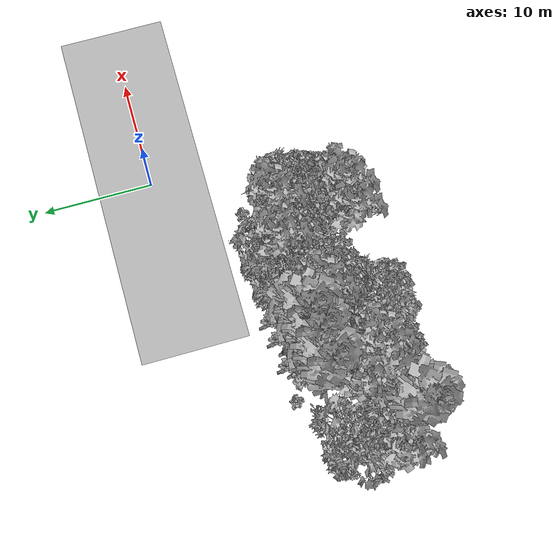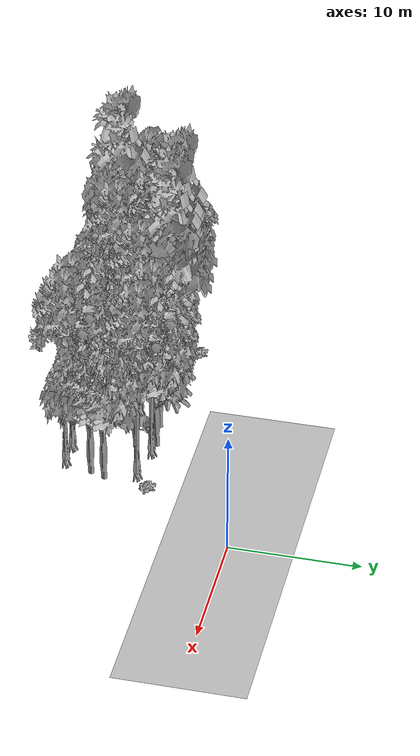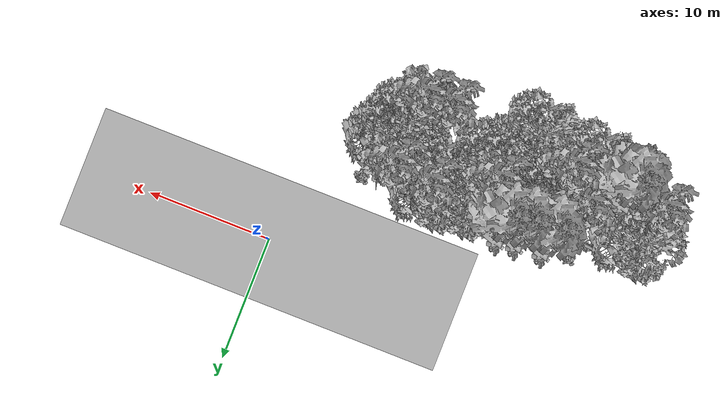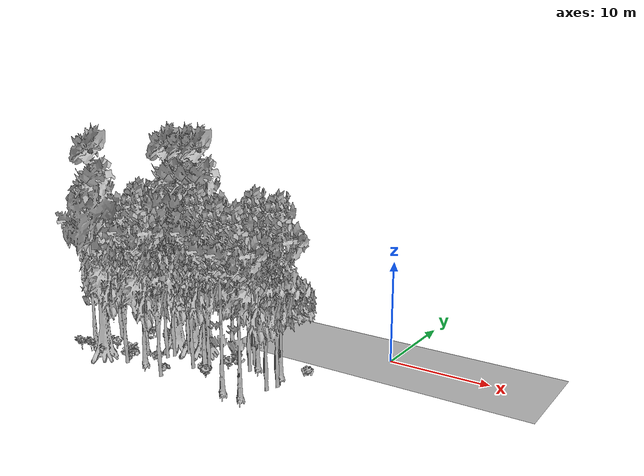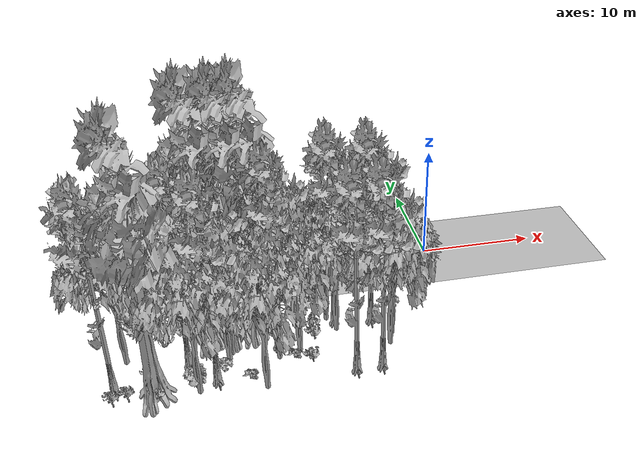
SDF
<sdf version="1.7">
 <world name="default">
  <model name="ground_plane">
   <static>1</static>
   <link name="link">
    <collision name="collision">
     <geometry><plane><normal>0 0 1</normal><size>100 100</size></plane></geometry>
     <surface><contact><ode><min_depth>0.01</min_depth><max_vel>0</max_vel></ode></contact></surface>
    </collision>
    <visual name="grass">
     <cast_shadows>0</cast_shadows>
     <geometry>
      <mesh>
       <scale>0.5814285714285714 0.18142857142857144 0.1</scale>
       <uri>file://grass_plane/meshes/grass_plane.dae</uri>
      </mesh>
     </geometry>
    </visual>
   </link>
  </model>
  <model name="Tree 7">
   <static>1</static>
   <pose>-26.50356392235294 -10.003784884026725 0 1.57079 -0 0</pose>
   <link name="link">
    <collision name="collision">
     <geometry><mesh><scale>3.5 5 3.5</scale><uri>model://tree_2/meshes/tree_2.obj</uri></mesh></geometry>
    </collision>
    <visual name="visual">
     <geometry><mesh><scale>3.5 5 3.5</scale><uri>model://tree_2/meshes/tree_2.obj</uri></mesh></geometry>
    </visual>
   </link>
  </model>
  <model name="Tree 32">
   <static>1</static>
   <pose>-27.256612310869155 -12.789069161869099 0 1.57079 -0 0</pose>
   <link name="link">
    <collision name="collision">
     <geometry><mesh><scale>3.5 5 3.5</scale><uri>model://tree_9/meshes/tree_9.obj</uri></mesh></geometry>
    </collision>
    <visual name="visual">
     <geometry><mesh><scale>3.5 5 3.5</scale><uri>model://tree_9/meshes/tree_9.obj</uri></mesh></geometry>
    </visual>
   </link>
  </model>
  <model name="Tree 37">
   <static>1</static>
   <pose>-10.161082945502073 -9.421930282803805 0 1.57079 -0 0</pose>
   <link name="link">
    <collision name="collision">
     <geometry><mesh><scale>3.5 5 3.5</scale><uri>model://tree_2/meshes/tree_2.obj</uri></mesh></geometry>
    </collision>
    <visual name="visual">
     <geometry><mesh><scale>3.5 5 3.5</scale><uri>model://tree_2/meshes/tree_2.obj</uri></mesh></geometry>
    </visual>
   </link>
  </model>
  <model name="Tree 54">
   <static>1</static>
   <pose>-13.398168805176041 -11.41270542551662 0 1.57079 -0 0</pose>
   <link name="link">
    <collision name="collision">
     <geometry><mesh><scale>3.5 5 3.5</scale><uri>model://tree_2/meshes/tree_2.obj</uri></mesh></geometry>
    </collision>
    <visual name="visual">
     <geometry><mesh><scale>3.5 5 3.5</scale><uri>model://tree_2/meshes/tree_2.obj</uri></mesh></geometry>
    </visual>
   </link>
  </model>
  <model name="Tree 85">
   <static>1</static>
   <pose>-18.52844617470343 -10.62968452248207 0 1.57079 -0 0</pose>
   <link name="link">
    <collision name="collision">
     <geometry><mesh><scale>3.5 5 3.5</scale><uri>model://tree_2/meshes/tree_2.obj</uri></mesh></geometry>
    </collision>
    <visual name="visual">
     <geometry><mesh><scale>3.5 5 3.5</scale><uri>model://tree_2/meshes/tree_2.obj</uri></mesh></geometry>
    </visual>
   </link>
  </model>
  <model name="Tree 90">
   <static>1</static>
   <pose>-17.841648080848024 -8.521651692213535 0 1.57079 -0 0</pose>
   <link name="link">
    <collision name="collision">
     <geometry><mesh><scale>3.5 5 3.5</scale><uri>model://tree_4/meshes/tree_4.obj</uri></mesh></geometry>
    </collision>
    <visual name="visual">
     <geometry><mesh><scale>3.5 5 3.5</scale><uri>model://tree_4/meshes/tree_4.obj</uri></mesh></geometry>
    </visual>
   </link>
  </model>
  <model name="Tree 102">
   <static>1</static>
   <pose>-21.199270986677252 -14.402922565292286 0 1.57079 -0 0</pose>
   <link name="link">
    <collision name="collision">
     <geometry><mesh><scale>3.5 5 3.5</scale><uri>model://tree_2/meshes/tree_2.obj</uri></mesh></geometry>
    </collision>
    <visual name="visual">
     <geometry><mesh><scale>3.5 5 3.5</scale><uri>model://tree_2/meshes/tree_2.obj</uri></mesh></geometry>
    </visual>
   </link>
  </model>
  <model name="Tree 110">
   <static>1</static>
   <pose>-10.01451948565132 -8.17476121073776 0 1.57079 -0 0</pose>
   <link name="link">
    <collision name="collision">
     <geometry><mesh><scale>3.5 5 3.5</scale><uri>model://tree_9/meshes/tree_9.obj</uri></mesh></geometry>
    </collision>
    <visual name="visual">
     <geometry><mesh><scale>3.5 5 3.5</scale><uri>model://tree_9/meshes/tree_9.obj</uri></mesh></geometry>
    </visual>
   </link>
  </model>
  <model name="Tree 142">
   <static>1</static>
   <pose>-24.27670281853038 -14.206072673165053 0 1.57079 -0 0</pose>
   <link name="link">
    <collision name="collision">
     <geometry><mesh><scale>3.5 5 3.5</scale><uri>model://tree_4/meshes/tree_4.obj</uri></mesh></geometry>
    </collision>
    <visual name="visual">
     <geometry><mesh><scale>3.5 5 3.5</scale><uri>model://tree_4/meshes/tree_4.obj</uri></mesh></geometry>
    </visual>
   </link>
  </model>
  <model name="Tree 148">
   <static>1</static>
   <pose>-16.341530281726698 -14.918523298218098 0 1.57079 -0 0</pose>
   <link name="link">
    <collision name="collision">
     <geometry><mesh><scale>3.5 5 3.5</scale><uri>model://tree_2/meshes/tree_2.obj</uri></mesh></geometry>
    </collision>
    <visual name="visual">
     <geometry><mesh><scale>3.5 5 3.5</scale><uri>model://tree_2/meshes/tree_2.obj</uri></mesh></geometry>
    </visual>
   </link>
  </model>
  <model name="Tree 170">
   <static>1</static>
   <pose>-17.81671194767356 -9.296824891989264 0 1.57079 -0 0</pose>
   <link name="link">
    <collision name="collision">
     <geometry><mesh><scale>3.5 5 3.5</scale><uri>model://tree_2/meshes/tree_2.obj</uri></mesh></geometry>
    </collision>
    <visual name="visual">
     <geometry><mesh><scale>3.5 5 3.5</scale><uri>model://tree_2/meshes/tree_2.obj</uri></mesh></geometry>
    </visual>
   </link>
  </model>
  <model name="Tree 177">
   <static>1</static>
   <pose>-6.346810671485024 -11.970695308302458 0 1.57079 -0 0</pose>
   <link name="link">
    <collision name="collision">
     <geometry><mesh><scale>3.5 5 3.5</scale><uri>model://tree_2/meshes/tree_2.obj</uri></mesh></geometry>
    </collision>
    <visual name="visual">
     <geometry><mesh><scale>3.5 5 3.5</scale><uri>model://tree_2/meshes/tree_2.obj</uri></mesh></geometry>
    </visual>
   </link>
  </model>
  <model name="Tree 237">
   <static>1</static>
   <pose>-13.049121994067256 -8.259192979325126 0 1.57079 -0 0</pose>
   <link name="link">
    <collision name="collision">
     <geometry><mesh><scale>3.5 5 3.5</scale><uri>model://tree_2/meshes/tree_2.obj</uri></mesh></geometry>
    </collision>
    <visual name="visual">
     <geometry><mesh><scale>3.5 5 3.5</scale><uri>model://tree_2/meshes/tree_2.obj</uri></mesh></geometry>
    </visual>
   </link>
  </model>
  <model name="Tree 240">
   <static>1</static>
   <pose>-19.92155651825697 -8.70672950541189 0 1.57079 -0 0</pose>
   <link name="link">
    <collision name="collision">
     <geometry><mesh><scale>3.5 5 3.5</scale><uri>model://tree_4/meshes/tree_4.obj</uri></mesh></geometry>
    </collision>
    <visual name="visual">
     <geometry><mesh><scale>3.5 5 3.5</scale><uri>model://tree_4/meshes/tree_4.obj</uri></mesh></geometry>
    </visual>
   </link>
  </model>
  <model name="Tree 247">
   <static>1</static>
   <pose>-10.721074627414268 -7.947490337731276 0 1.57079 -0 0</pose>
   <link name="link">
    <collision name="collision">
     <geometry><mesh><scale>3.5 5 3.5</scale><uri>model://tree_2/meshes/tree_2.obj</uri></mesh></geometry>
    </collision>
    <visual name="visual">
     <geometry><mesh><scale>3.5 5 3.5</scale><uri>model://tree_2/meshes/tree_2.obj</uri></mesh></geometry>
    </visual>
   </link>
  </model>
  <model name="Tree 260">
   <static>1</static>
   <pose>-14.874898172854273 -10.274900404385868 0 1.57079 -0 0</pose>
   <link name="link">
    <collision name="collision">
     <geometry><mesh><scale>3.5 5 3.5</scale><uri>model://tree_9/meshes/tree_9.obj</uri></mesh></geometry>
    </collision>
    <visual name="visual">
     <geometry><mesh><scale>3.5 5 3.5</scale><uri>model://tree_9/meshes/tree_9.obj</uri></mesh></geometry>
    </visual>
   </link>
  </model>
  <model name="Tree 294">
   <static>1</static>
   <pose>-7.4396011094350385 -14.226553793921905 0 1.57079 -0 0</pose>
   <link name="link">
    <collision name="collision">
     <geometry><mesh><scale>3.5 5 3.5</scale><uri>model://tree_9/meshes/tree_9.obj</uri></mesh></geometry>
    </collision>
    <visual name="visual">
     <geometry><mesh><scale>3.5 5 3.5</scale><uri>model://tree_9/meshes/tree_9.obj</uri></mesh></geometry>
    </visual>
   </link>
  </model>
  <model name="Tree 326">
   <static>1</static>
   <pose>-15.051756699150197 -11.869920343238405 0 1.57079 -0 0</pose>
   <link name="link">
    <collision name="collision">
     <geometry><mesh><scale>3.5 5 3.5</scale><uri>model://tree_2/meshes/tree_2.obj</uri></mesh></geometry>
    </collision>
    <visual name="visual">
     <geometry><mesh><scale>3.5 5 3.5</scale><uri>model://tree_2/meshes/tree_2.obj</uri></mesh></geometry>
    </visual>
   </link>
  </model>
  <model name="Tree 346">
   <static>1</static>
   <pose>-5.9450678886671255 -10.857552492325027 0 1.57079 -0 0</pose>
   <link name="link">
    <collision name="collision">
     <geometry><mesh><scale>3.5 5 3.5</scale><uri>model://tree_2/meshes/tree_2.obj</uri></mesh></geometry>
    </collision>
    <visual name="visual">
     <geometry><mesh><scale>3.5 5 3.5</scale><uri>model://tree_2/meshes/tree_2.obj</uri></mesh></geometry>
    </visual>
   </link>
  </model>
  <model name="Tree 377">
   <static>1</static>
   <pose>-16.386226156823014 -8.333586000743129 0 1.57079 -0 0</pose>
   <link name="link">
    <collision name="collision">
     <geometry><mesh><scale>3.5 5 3.5</scale><uri>model://tree_4/meshes/tree_4.obj</uri></mesh></geometry>
    </collision>
    <visual name="visual">
     <geometry><mesh><scale>3.5 5 3.5</scale><uri>model://tree_4/meshes/tree_4.obj</uri></mesh></geometry>
    </visual>
   </link>
  </model>
  <model name="Tree 389">
   <static>1</static>
   <pose>-9.427552476458708 -14.221566116995428 0 1.57079 -0 0</pose>
   <link name="link">
    <collision name="collision">
     <geometry><mesh><scale>3.5 5 3.5</scale><uri>model://tree_9/meshes/tree_9.obj</uri></mesh></geometry>
    </collision>
    <visual name="visual">
     <geometry><mesh><scale>3.5 5 3.5</scale><uri>model://tree_9/meshes/tree_9.obj</uri></mesh></geometry>
    </visual>
   </link>
  </model>
  <model name="Tree 402">
   <static>1</static>
   <pose>-18.8124002814672 -11.352189814709659 0 1.57079 -0 0</pose>
   <link name="link">
    <collision name="collision">
     <geometry><mesh><scale>3.5 5 3.5</scale><uri>model://tree_2/meshes/tree_2.obj</uri></mesh></geometry>
    </collision>
    <visual name="visual">
     <geometry><mesh><scale>3.5 5 3.5</scale><uri>model://tree_2/meshes/tree_2.obj</uri></mesh></geometry>
    </visual>
   </link>
  </model>
  <model name="Tree 410">
   <static>1</static>
   <pose>-19.788942325213235 -13.305261611173204 0 1.57079 -0 0</pose>
   <link name="link">
    <collision name="collision">
     <geometry><mesh><scale>3.5 5 3.5</scale><uri>model://tree_9/meshes/tree_9.obj</uri></mesh></geometry>
    </collision>
    <visual name="visual">
     <geometry><mesh><scale>3.5 5 3.5</scale><uri>model://tree_9/meshes/tree_9.obj</uri></mesh></geometry>
    </visual>
   </link>
  </model>
  <model name="Tree 435">
   <static>1</static>
   <pose>-7.061368661687972 -8.581677769735776 0 1.57079 -0 0</pose>
   <link name="link">
    <collision name="collision">
     <geometry><mesh><scale>3.5 5 3.5</scale><uri>model://tree_9/meshes/tree_9.obj</uri></mesh></geometry>
    </collision>
    <visual name="visual">
     <geometry><mesh><scale>3.5 5 3.5</scale><uri>model://tree_9/meshes/tree_9.obj</uri></mesh></geometry>
    </visual>
   </link>
  </model>
  <model name="Tree 439">
   <static>1</static>
   <pose>-21.780121989151667 -11.035043760903445 0 1.57079 -0 0</pose>
   <link name="link">
    <collision name="collision">
     <geometry><mesh><scale>3.5 5 3.5</scale><uri>model://tree_9/meshes/tree_9.obj</uri></mesh></geometry>
    </collision>
    <visual name="visual">
     <geometry><mesh><scale>3.5 5 3.5</scale><uri>model://tree_9/meshes/tree_9.obj</uri></mesh></geometry>
    </visual>
   </link>
  </model>
  <model name="Bush 3">
   <static>1</static>
   <pose>-21.339254544352237 -13.85717198082575 0 1.57079 -0 0</pose>
   <link name="link">
    <collision name="collision">
     <geometry><mesh><scale>2 2 2</scale><uri>model://bush_1/meshes/bush_1.obj</uri></mesh></geometry>
     <surface><contact><collide_without_contact>false</collide_without_contact></contact></surface>
    </collision>
    <visual name="visual">
     <geometry><mesh><scale>2 2 2</scale><uri>model://bush_1/meshes/bush_1.obj</uri></mesh></geometry>
    </visual>
   </link>
  </model>
  <model name="Bush 5">
   <static>1</static>
   <pose>-20.536273861425812 -8.23959010506734 0 1.57079 -0 0</pose>
   <link name="link">
    <collision name="collision">
     <geometry><mesh><scale>2 2 2</scale><uri>model://bush_0/meshes/bush_0.obj</uri></mesh></geometry>
     <surface><contact><collide_without_contact>false</collide_without_contact></contact></surface>
    </collision>
    <visual name="visual">
     <geometry><mesh><scale>2 2 2</scale><uri>model://bush_0/meshes/bush_0.obj</uri></mesh></geometry>
    </visual>
   </link>
  </model>
  <model name="Bush 8">
   <static>1</static>
   <pose>-12.53032103517782 -12.876696739770562 0 1.57079 -0 0</pose>
   <link name="link">
    <collision name="collision">
     <geometry><mesh><scale>2 2 2</scale><uri>model://bush_0/meshes/bush_0.obj</uri></mesh></geometry>
     <surface><contact><collide_without_contact>false</collide_without_contact></contact></surface>
    </collision>
    <visual name="visual">
     <geometry><mesh><scale>2 2 2</scale><uri>model://bush_0/meshes/bush_0.obj</uri></mesh></geometry>
    </visual>
   </link>
  </model>
  <model name="Bush 10">
   <static>1</static>
   <pose>-19.139897958078052 -12.138651281239088 0 1.57079 -0 0</pose>
   <link name="link">
    <collision name="collision">
     <geometry><mesh><scale>2 2 2</scale><uri>model://bush_3/meshes/bush_3.obj</uri></mesh></geometry>
     <surface><contact><collide_without_contact>false</collide_without_contact></contact></surface>
    </collision>
    <visual name="visual">
     <geometry><mesh><scale>2 2 2</scale><uri>model://bush_3/meshes/bush_3.obj</uri></mesh></geometry>
    </visual>
   </link>
  </model>
  <model name="Bush 41">
   <static>1</static>
   <pose>-20.608587798377123 -8.229699669218702 0 1.57079 -0 0</pose>
   <link name="link">
    <collision name="collision">
     <geometry><mesh><scale>2 2 2</scale><uri>model://bush_1/meshes/bush_1.obj</uri></mesh></geometry>
     <surface><contact><collide_without_contact>false</collide_without_contact></contact></surface>
    </collision>
    <visual name="visual">
     <geometry><mesh><scale>2 2 2</scale><uri>model://bush_1/meshes/bush_1.obj</uri></mesh></geometry>
    </visual>
   </link>
  </model>
  <model name="Bush 45">
   <static>1</static>
   <pose>-24.499219343827985 -12.450270227873915 0 1.57079 -0 0</pose>
   <link name="link">
    <collision name="collision">
     <geometry><mesh><scale>2 2 2</scale><uri>model://bush_0/meshes/bush_0.obj</uri></mesh></geometry>
     <surface><contact><collide_without_contact>false</collide_without_contact></contact></surface>
    </collision>
    <visual name="visual">
     <geometry><mesh><scale>2 2 2</scale><uri>model://bush_0/meshes/bush_0.obj</uri></mesh></geometry>
    </visual>
   </link>
  </model>
  <model name="Bush 83">
   <static>1</static>
   <pose>-4.89865352713538 -7.217193208402405 0 1.57079 -0 0</pose>
   <link name="link">
    <collision name="collision">
     <geometry><mesh><scale>2 2 2</scale><uri>model://bush_3/meshes/bush_3.obj</uri></mesh></geometry>
     <surface><contact><collide_without_contact>false</collide_without_contact></contact></surface>
    </collision>
    <visual name="visual">
     <geometry><mesh><scale>2 2 2</scale><uri>model://bush_3/meshes/bush_3.obj</uri></mesh></geometry>
    </visual>
   </link>
  </model>
  <model name="Bush 95">
   <static>1</static>
   <pose>-15.690765967196555 -8.327481955254292 0 1.57079 -0 0</pose>
   <link name="link">
    <collision name="collision">
     <geometry><mesh><scale>2 2 2</scale><uri>model://bush_0/meshes/bush_0.obj</uri></mesh></geometry>
     <surface><contact><collide_without_contact>false</collide_without_contact></contact></surface>
    </collision>
    <visual name="visual">
     <geometry><mesh><scale>2 2 2</scale><uri>model://bush_0/meshes/bush_0.obj</uri></mesh></geometry>
    </visual>
   </link>
  </model>
  <model name="Bush 123">
   <static>1</static>
   <pose>-17.306154456204332 -13.34737929679257 0 1.57079 -0 0</pose>
   <link name="link">
    <collision name="collision">
     <geometry><mesh><scale>2 2 2</scale><uri>model://bush_2/meshes/bush_2.obj</uri></mesh></geometry>
     <surface><contact><collide_without_contact>false</collide_without_contact></contact></surface>
    </collision>
    <visual name="visual">
     <geometry><mesh><scale>2 2 2</scale><uri>model://bush_2/meshes/bush_2.obj</uri></mesh></geometry>
    </visual>
   </link>
  </model>
  <model name="Bush 143">
   <static>1</static>
   <pose>-23.899690499585553 -14.719638481400258 0 1.57079 -0 0</pose>
   <link name="link">
    <collision name="collision">
     <geometry><mesh><scale>2 2 2</scale><uri>model://bush_0/meshes/bush_0.obj</uri></mesh></geometry>
     <surface><contact><collide_without_contact>false</collide_without_contact></contact></surface>
    </collision>
    <visual name="visual">
     <geometry><mesh><scale>2 2 2</scale><uri>model://bush_0/meshes/bush_0.obj</uri></mesh></geometry>
    </visual>
   </link>
  </model>
  <model name="Bush 188">
   <static>1</static>
   <pose>-23.559091306500857 -8.674921260456358 0 1.57079 -0 0</pose>
   <link name="link">
    <collision name="collision">
     <geometry><mesh><scale>2 2 2</scale><uri>model://bush_4/meshes/bush_4.obj</uri></mesh></geometry>
     <surface><contact><collide_without_contact>false</collide_without_contact></contact></surface>
    </collision>
    <visual name="visual">
     <geometry><mesh><scale>2 2 2</scale><uri>model://bush_4/meshes/bush_4.obj</uri></mesh></geometry>
    </visual>
   </link>
  </model>
  <model name="Bush 199">
   <static>1</static>
   <pose>-20.57254247022759 -9.092539971194702 0 1.57079 -0 0</pose>
   <link name="link">
    <collision name="collision">
     <geometry><mesh><scale>2 2 2</scale><uri>model://bush_5/meshes/bush_5.obj</uri></mesh></geometry>
     <surface><contact><collide_without_contact>false</collide_without_contact></contact></surface>
    </collision>
    <visual name="visual">
     <geometry><mesh><scale>2 2 2</scale><uri>model://bush_5/meshes/bush_5.obj</uri></mesh></geometry>
    </visual>
   </link>
  </model>
  <model name="Bush 227">
   <static>1</static>
   <pose>-22.268435925443992 -7.199351267704613 0 1.57079 -0 0</pose>
   <link name="link">
    <collision name="collision">
     <geometry><mesh><scale>2 2 2</scale><uri>model://bush_3/meshes/bush_3.obj</uri></mesh></geometry>
     <surface><contact><collide_without_contact>false</collide_without_contact></contact></surface>
    </collision>
    <visual name="visual">
     <geometry><mesh><scale>2 2 2</scale><uri>model://bush_3/meshes/bush_3.obj</uri></mesh></geometry>
    </visual>
   </link>
  </model>
  <model name="Bush 232">
   <static>1</static>
   <pose>-26.169833384298258 -14.310055304350861 0 1.57079 -0 0</pose>
   <link name="link">
    <collision name="collision">
     <geometry><mesh><scale>2 2 2</scale><uri>model://bush_5/meshes/bush_5.obj</uri></mesh></geometry>
     <surface><contact><collide_without_contact>false</collide_without_contact></contact></surface>
    </collision>
    <visual name="visual">
     <geometry><mesh><scale>2 2 2</scale><uri>model://bush_5/meshes/bush_5.obj</uri></mesh></geometry>
    </visual>
   </link>
  </model>
  <model name="Bush 239">
   <static>1</static>
   <pose>-27.23482223993002 -14.598828264368361 0 1.57079 -0 0</pose>
   <link name="link">
    <collision name="collision">
     <geometry><mesh><scale>2 2 2</scale><uri>model://bush_5/meshes/bush_5.obj</uri></mesh></geometry>
     <surface><contact><collide_without_contact>false</collide_without_contact></contact></surface>
    </collision>
    <visual name="visual">
     <geometry><mesh><scale>2 2 2</scale><uri>model://bush_5/meshes/bush_5.obj</uri></mesh></geometry>
    </visual>
   </link>
  </model>
  <model name="Bush 244">
   <static>1</static>
   <pose>-11.968761108131865 -10.228182827080747 0 1.57079 -0 0</pose>
   <link name="link">
    <collision name="collision">
     <geometry><mesh><scale>2 2 2</scale><uri>model://bush_0/meshes/bush_0.obj</uri></mesh></geometry>
     <surface><contact><collide_without_contact>false</collide_without_contact></contact></surface>
    </collision>
    <visual name="visual">
     <geometry><mesh><scale>2 2 2</scale><uri>model://bush_0/meshes/bush_0.obj</uri></mesh></geometry>
    </visual>
   </link>
  </model>
  <model name="Bush 270">
   <static>1</static>
   <pose>-13.77709549428375 -11.716518349927068 0 1.57079 -0 0</pose>
   <link name="link">
    <collision name="collision">
     <geometry><mesh><scale>2 2 2</scale><uri>model://bush_2/meshes/bush_2.obj</uri></mesh></geometry>
     <surface><contact><collide_without_contact>false</collide_without_contact></contact></surface>
    </collision>
    <visual name="visual">
     <geometry><mesh><scale>2 2 2</scale><uri>model://bush_2/meshes/bush_2.obj</uri></mesh></geometry>
    </visual>
   </link>
  </model>
  <model name="Bush 334">
   <static>1</static>
   <pose>-12.014495492097183 -8.951971533222045 0 1.57079 -0 0</pose>
   <link name="link">
    <collision name="collision">
     <geometry><mesh><scale>2 2 2</scale><uri>model://bush_4/meshes/bush_4.obj</uri></mesh></geometry>
     <surface><contact><collide_without_contact>false</collide_without_contact></contact></surface>
    </collision>
    <visual name="visual">
     <geometry><mesh><scale>2 2 2</scale><uri>model://bush_4/meshes/bush_4.obj</uri></mesh></geometry>
    </visual>
   </link>
  </model>
 </world>
</sdf>
